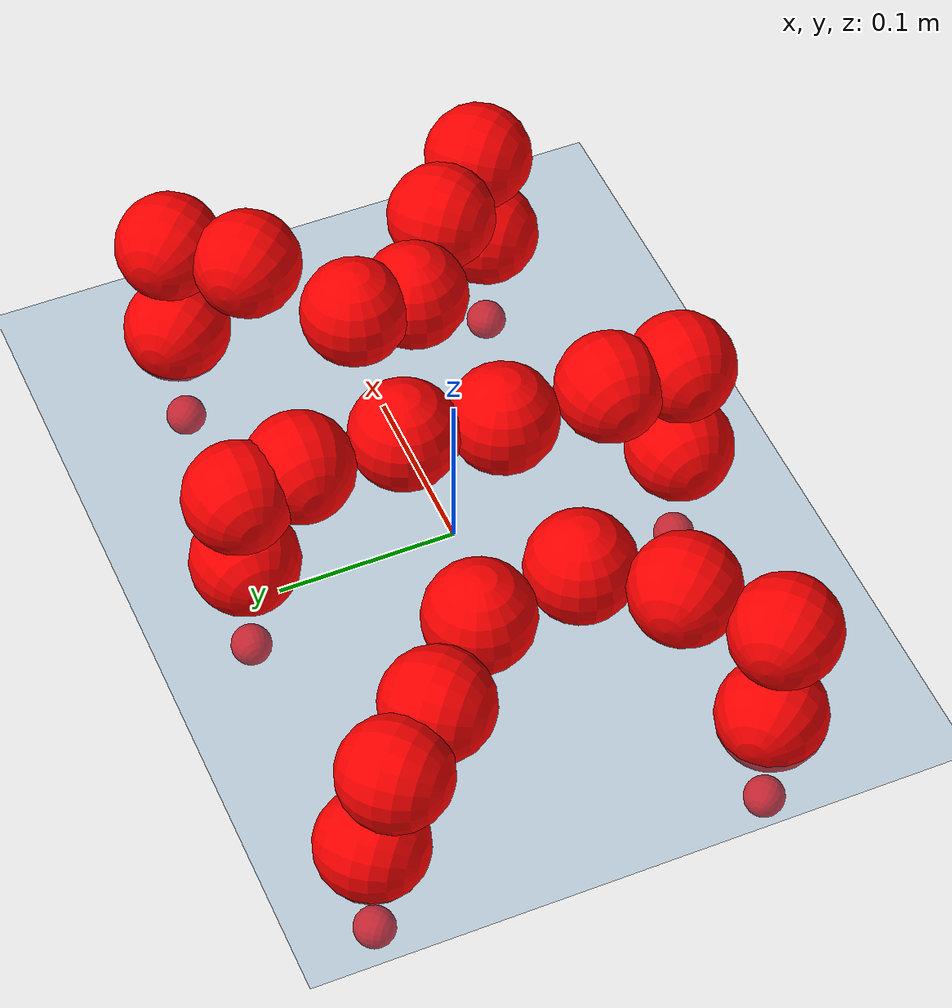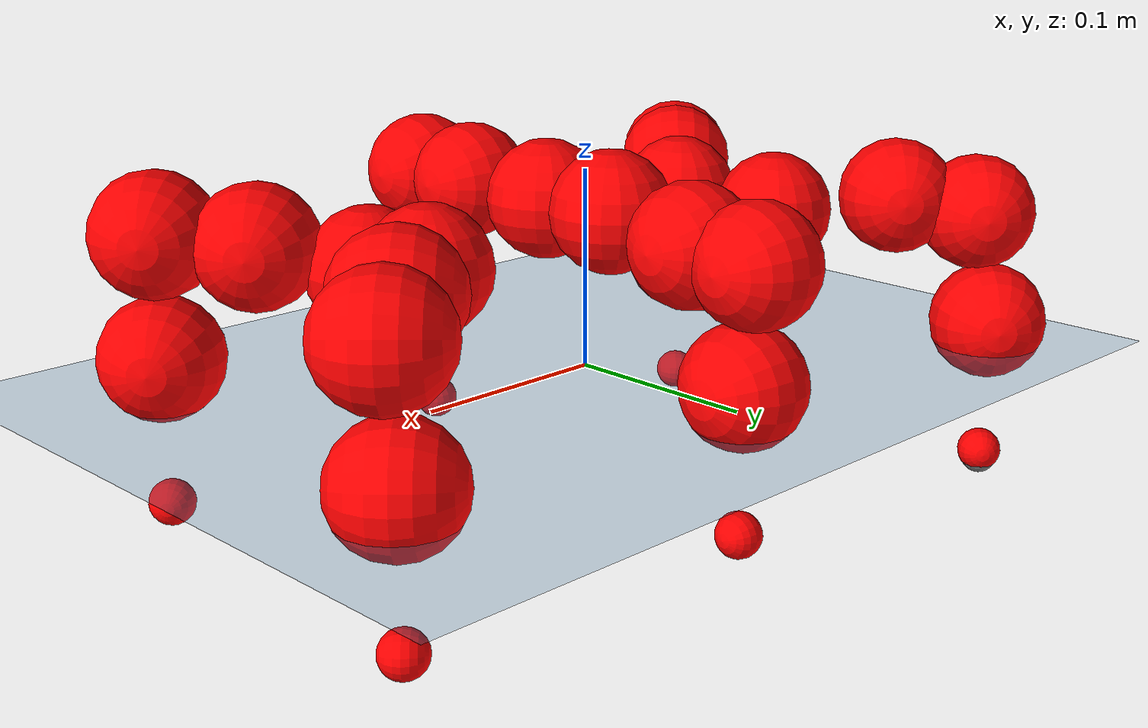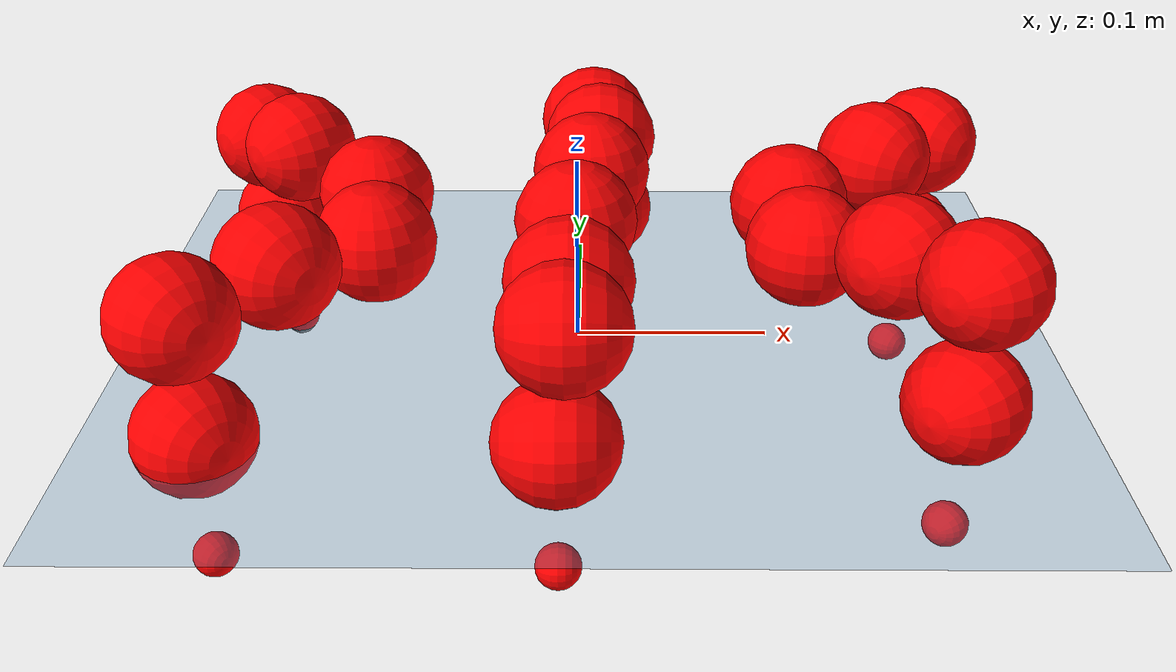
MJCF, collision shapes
<mujoco model="Golem">
  <compiler angle="radian" assetdir="assets" balanceinertia="true" inertiafromgeom="false"/>

  <option timestep="0.005" density="1.2" viscosity="2e-05"/>

  <size nkey="1"/>

  <visual>
    <quality shadowsize="8192"/>
    <map shadowclip="0.5"/>
  </visual>

  <default>
    <default class="/">
      <joint armature="0.01" damping="0.01" frictionloss="0.01"/>
      <geom contype="0" conaffinity="0" group="1" solref="-1000 -80"/>
      <site size="0.01 0.005 0.005" group="5"/>
      <general forcelimited="true" biastype="affine" gainprm="25" biasprm="0 -25 -0.5"/>
      <default class="visual">
        <geom type="mesh" group="2"/>
      </default>
      <default class="collision">
        <geom group="3"/>
      </default>
      <default class="foot">
        <geom size="0.01 0 0" condim="6" group="4" priority="1" solimp="0.015 1 0.01"/>
      </default>
      <default class="reward_collision_sphere">
        <geom group="5" rgba="1 0 0 1"/>
      </default>
    </default>
  </default>

  <asset>
    <texture type="skybox" colorspace="auto" name="//unnamed_texture_0" builtin="gradient" rgb1="0.95 0.95 0.95" rgb2="0.95 0.95 0.95" width="100" height="600"/>
    <texture type="2d" colorspace="auto" name="texplane" builtin="checker" rgb1="0.345 0.575 0.748" rgb2="0.345 0.575 0.748" markrgb="1 1 1" width="512" height="512"/>
    <material name="MatPlane" class="/" texture="texplane" texuniform="true" texrepeat="2 2" specular="0.9"/>
    <mesh name="body" class="/" file="body.stl" scale="0.001 0.001 0.001"/>
    <mesh name="coxa" class="/" file="coxa.stl" scale="0.001 0.001 0.001"/>
    <mesh name="femur" class="/" file="femur.stl" scale="0.001 0.001 0.001"/>
    <mesh name="tibia" class="/" file="tibia.stl" scale="0.001 0.001 0.001"/>
    <mesh name="tarsus" class="/" file="tarsus.stl" scale="0.001 0.001 0.001"/>
  </asset>

  <worldbody>
    <geom name="floor" class="/" size="100 100 0.125" type="plane" group="0" material="MatPlane"/>
    <light name="toplight_shadow" class="/" pos="0 0 5" dir="0.0990148 0.0990148 -0.990148" type="directional" ambient="0.04 0.04 0.04" diffuse="0.55 0.55 0.55" specular="0.12 0.12 0.12"/>
    <light name="toplight_fill" class="/" pos="0 0 5" dir="0.0990148 0.0990148 -0.990148" type="directional" castshadow="false" ambient="0.04 0.04 0.04" diffuse="0.3 0.3 0.3" specular="0.08 0.08 0.08"/>
    <body name="trunk" pos="0.000319933 -0.000227698 0.000231826" quat="0.999988 -0.00442291 0.00202063 0.00114689">
      <inertial pos="-0.0002812 -0.00217317 -0.00506352" quat="0.999995 -0.000395078 0.00316499 0.000358954" mass="1.37419" diaginertia="0.00135952 0.000128605 0.0215546"/>
      <joint name="//unnamed_joint_0" type="free"/>
      <geom name="//unnamed_geom_1" class="/" pos="0 0 0.0748389" quat="1 0 0 0" type="mesh" rgba="0.9 0.9 0.9 1" mesh="body"/>
      <site name="imu" class="/" pos="0.0417641 0.0194036 0.12294" size="0.00751996"/>
      <camera name="track" class="/" pos="0 -0.829288 0" quat="0.707107 0.707107 0 0" mode="trackcom"/>
      <camera name="ego_camera" class="/" pos="0.0873582 0 0.116936" quat="-0.5 -0.5 0.5 0.5"/>
      <body name="coxa_RR" pos="-0.113484 -0.0427361 0.0689008" quat="0.386509 0.00211509 -0.00156013 -0.922282">
        <inertial pos="0.00131895 -0.00221236 -0.00614335" quat="0.999722 0.00529341 0.0206332 -0.0101178" mass="0.0774552" diaginertia="0.00125457 0.00011491 0.0195823"/>
        <joint name="coxa_joint_RR" class="/" pos="0 0 0" axis="0.00412248 0.00788481 -0.99996" range="-3.01178 3.30579" armature="0.00731056" damping="0.00732945" frictionloss="0.00600638"/>
        <geom name="//unnamed_geom_2" class="/" type="mesh" rgba="0.2 0.2 0.2 1" mesh="coxa"/>
        <geom name="//unnamed_geom_3" class="reward_collision_sphere" size="0.0300798" pos="-0.0201596 0 0"/>
        <body name="femur_RR" pos="0.0356725 -0.000925436 0.00740036" quat="0.500436 -0.499782 0.499916 0.499865">
          <inertial pos="0.00117577 -0.000788888 -0.000264742" quat="0.99995 -0.00793492 -0.00451438 0.00412266" mass="0.0877099" diaginertia="0.00133199 0.000118208 0.0221688"/>
          <joint name="femur_joint_RR" class="/" pos="0 0 0" axis="-0.00681524 -0.0115606 -0.99991" range="-3.30464 3.17603" armature="0.010376" damping="0.0210903" frictionloss="0.00775305"/>
          <geom name="//unnamed_geom_4" class="/" type="mesh" rgba="0.9 0.9 0.9 1" mesh="femur"/>
          <geom name="//unnamed_geom_5" class="reward_collision_sphere" size="0.0300798"/>
          <body name="tibia_RR" pos="0.00647192 -0.0540145 -0.00219609" quat="-0.00230968 0.999996 -0.000299406 0.0015763">
            <inertial pos="-0.00673575 -0.00360494 -0.00148141" quat="0.999951 -0.00971846 -0.0017465 -0.000146344" mass="0.0780191" diaginertia="0.0013862 0.000122005 0.0238484"/>
            <joint name="tibia_joint_RR" class="/" pos="0 0 0" axis="-0.0314386 -0.0296948 0.999064" range="-3.31321 3.17658" armature="0.00976554" damping="0.0315317" frictionloss="0.00704405"/>
            <geom name="//unnamed_geom_6" class="/" type="mesh" rgba="0.2 0.2 0.2 1" mesh="tibia"/>
            <geom name="//unnamed_geom_7" class="reward_collision_sphere" size="0.0300798"/>
            <body name="tarsus_RR" pos="0.0657893 -0.00246055 0.00363227" quat="1 0.000157786 -0.000645913 -0.00020805">
              <inertial pos="0.0438297 0.000736636 0.00174764" quat="0.505433 0.493491 0.497621 0.503366" mass="0.0789714" diaginertia="0.00126279 0.00012284 0.0197947"/>
              <joint name="tarsus_joint_RR" class="/" pos="0 0 0" axis="0.0321584 0.0139232 0.999386" range="-3.08652 3.11223" armature="0.00729925" damping="0" frictionloss="0.00788091"/>
              <geom name="//unnamed_geom_8" class="/" type="mesh" rgba="0.9 0.9 0.9 1" mesh="tarsus"/>
              <geom name="foot_1" class="foot" size="0.00723839" pos="0.0752624 0 0" quat="0 -0.707107 0 0.707107"/>
              <geom name="//unnamed_geom_10" class="reward_collision_sphere" size="0.0300798"/>
              <geom name="//unnamed_geom_11" class="reward_collision_sphere" size="0.0112799" pos="0.0722385 0 0"/>
              <site name="foot_1" class="foot" pos="0.0752624 0 0" quat="0 -0.707107 0 0.707107" size="0.00751996"/>
            </body>
          </body>
        </body>
      </body>
      <body name="coxa_RM" pos="-0.000911507 -0.048479 0.0806827" quat="0.708013 0.00384347 0.000857695 -0.706188">
        <inertial pos="-0.00250892 0.00756343 -0.00104392" quat="0.999951 0.00471304 0.00810374 -0.00311082" mass="0.093374" diaginertia="0.00152642 0.000119822 0.0214235"/>
        <joint name="coxa_joint_RM" class="/" pos="0 0 0" axis="0.0249252 0.0278784 -0.999301" stiffness="0.00307437" range="-3.1468 3.00235" armature="0.00424057" damping="0.0326724" frictionloss="0.00955789"/>
        <geom name="//unnamed_geom_12" class="/" type="mesh" rgba="0.2 0.2 0.2 1" mesh="coxa"/>
        <geom name="//unnamed_geom_13" class="reward_collision_sphere" size="0.0300798" pos="-0.0201596 0 0"/>
        <body name="femur_RM" pos="0.0399742 -0.00240335 0.000352075" quat="0.500204 -0.499552 0.499827 0.500416">
          <inertial pos="-0.00454004 -0.000703245 0.00124443" quat="0.999999 0.000681558 0.0006709 -0.000895381" mass="0.0766147" diaginertia="0.00141504 0.000116606 0.0208275"/>
          <joint name="femur_joint_RM" class="/" pos="0 0 0" axis="-0.00069453 0.00513066 -0.999987" range="-3.0805 3.09953" armature="0.00704772" damping="0" frictionloss="0.00565034"/>
          <geom name="//unnamed_geom_14" class="/" type="mesh" rgba="0.9 0.9 0.9 1" mesh="femur"/>
          <geom name="//unnamed_geom_15" class="reward_collision_sphere" size="0.0300798"/>
          <body name="tibia_RM" pos="0.000465425 -0.0404118 -0.00136836" quat="0.000404171 1 -0.000312182 -0.000676218">
            <inertial pos="-0.00160361 -0.00123279 0.00774834" quat="0.999351 0.016913 -0.0172022 0.0267422" mass="0.0848282" diaginertia="0.00125996 0.000128644 0.0204398"/>
            <joint name="tibia_joint_RM" class="/" pos="0 0 0" axis="0.000347572 2.94438e-05 1" range="-3.12184 3.18013" armature="0.00481563" damping="0" frictionloss="0.00393329"/>
            <geom name="//unnamed_geom_16" class="/" type="mesh" rgba="0.2 0.2 0.2 1" mesh="tibia"/>
            <geom name="//unnamed_geom_17" class="reward_collision_sphere" size="0.0300798"/>
            <body name="tarsus_RM" pos="0.0591427 -0.000119191 0.00407463" quat="1 -2.94575e-05 -0.00025066 -0.000287282">
              <inertial pos="0.0353225 0.00089871 -0.000829798" quat="0.509478 0.50898 0.502391 0.478513" mass="0.0855536" diaginertia="0.00131756 0.000118993 0.023077"/>
              <joint name="tarsus_joint_RM" class="/" pos="0 0 0" axis="0.00113401 0.000599887 0.999999" range="-3.31413 3.07966" armature="0.0037931" damping="0" frictionloss="0.00828151"/>
              <geom name="//unnamed_geom_18" class="/" type="mesh" rgba="0.9 0.9 0.9 1" mesh="tarsus"/>
              <geom name="foot_2" class="foot" size="0.00516148" pos="0.0752624 0 0" quat="0 -0.707107 0 0.707107"/>
              <geom name="//unnamed_geom_20" class="reward_collision_sphere" size="0.0300798"/>
              <geom name="//unnamed_geom_21" class="reward_collision_sphere" size="0.0112799" pos="0.0722385 0 0"/>
              <site name="foot_2" class="foot" pos="0.0752624 0 0" quat="0 -0.707107 0 0.707107" size="0.00751996"/>
            </body>
          </body>
        </body>
      </body>
      <body name="coxa_RF" pos="0.127156 -0.0395148 0.0659849" quat="0.924017 0.000312874 -0.000335399 -0.382352">
        <inertial pos="0.00583429 0.0101991 -0.00454295" quat="0.999632 -0.0197015 -0.0181695 -0.00428906" mass="0.0861828" diaginertia="0.00128853 0.000124589 0.0220805"/>
        <joint name="coxa_joint_RF" class="/" pos="0 0 0" axis="0.00091046 0.0032556 -0.999994" range="-3.09669 2.97103" armature="0.00901284" damping="0.00547881" frictionloss="0.00692018"/>
        <geom name="//unnamed_geom_22" class="/" type="mesh" rgba="0.2 0.2 0.2 1" mesh="coxa"/>
        <geom name="//unnamed_geom_23" class="reward_collision_sphere" size="0.0300798" pos="-0.0201596 0 0"/>
        <body name="femur_RF" pos="0.0298563 0.00422919 0.0117047" quat="0.502811 -0.498173 0.500948 0.498052">
          <inertial pos="-3.58217e-05 0.005554 -0.00823985" quat="0.999038 0.0260719 -0.028589 0.0206388" mass="0.0834895" diaginertia="0.00142198 0.000133944 0.0213472"/>
          <joint name="femur_joint_RF" class="/" pos="0 0 0" axis="-0.00467244 0.00346033 -0.999983" stiffness="0.003084" range="-3.24211 3.13857" armature="0.00750456" damping="0.0209643" frictionloss="0.0105795"/>
          <geom name="//unnamed_geom_24" class="/" type="mesh" rgba="0.9 0.9 0.9 1" mesh="femur"/>
          <geom name="//unnamed_geom_25" class="reward_collision_sphere" size="0.0300798"/>
          <body name="tibia_RF" pos="-0.00454818 -0.0467449 -0.00293259" quat="-0.000444379 0.999996 0.00275139 6.94448e-05">
            <inertial pos="-0.0020149 -0.00343797 0.00154958" quat="0.999691 -0.0215389 -0.0101963 0.00704233" mass="0.08343" diaginertia="0.00134102 0.000123935 0.0217804"/>
            <joint name="tibia_joint_RF" class="/" pos="0 0 0" axis="-0.0377659 0.00257687 0.999283" range="-3.15033 3.10766" armature="0.00805044" damping="0.0204443" frictionloss="0.00745028"/>
            <geom name="//unnamed_geom_26" class="/" type="mesh" rgba="0.2 0.2 0.2 1" mesh="tibia"/>
            <geom name="//unnamed_geom_27" class="reward_collision_sphere" size="0.0300798"/>
            <body name="tarsus_RF" pos="0.059984 0.00186096 0.00342489" quat="0.999992 -0.000854394 -0.00115324 0.00376179">
              <inertial pos="0.0484851 0.00113674 -0.00985389" quat="0.520015 0.497043 0.502396 0.479719" mass="0.0984303" diaginertia="0.0013607 0.000133345 0.024812"/>
              <joint name="tarsus_joint_RF" class="/" pos="0 0 0" axis="0.043352 -0.00606803 0.999041" range="-3.31588 3.1408" armature="0.00768163" damping="0" frictionloss="0.00566262"/>
              <geom name="//unnamed_geom_28" class="/" type="mesh" rgba="0.9 0.9 0.9 1" mesh="tarsus"/>
              <geom name="foot_3" class="foot" size="0.00736241" pos="0.0752624 0 0" quat="0 -0.707107 0 0.707107"/>
              <geom name="//unnamed_geom_30" class="reward_collision_sphere" size="0.0300798"/>
              <geom name="//unnamed_geom_31" class="reward_collision_sphere" size="0.0112799" pos="0.0722385 0 0"/>
              <site name="foot_3" class="foot" pos="0.0752624 0 0" quat="0 -0.707107 0 0.707107" size="0.00751996"/>
            </body>
          </body>
        </body>
      </body>
      <body name="coxa_LR" pos="-0.121646 0.0452624 0.0675779" quat="0.379004 0.000761193 -0.00109634 0.925394">
        <inertial pos="-0.00776221 0.00206212 0.00428456" quat="0.999533 0.0104259 0.0285901 -0.00274676" mass="0.0835111" diaginertia="0.00135211 0.000120683 0.0215262"/>
        <joint name="coxa_joint_LR" class="/" pos="0 0 0" axis="0.0432753 0.00250201 -0.99906" range="-3.1526 3.17663" armature="0.00820067" damping="0.0450179" frictionloss="0.00690834"/>
        <geom name="//unnamed_geom_32" class="/" type="mesh" rgba="0.2 0.2 0.2 1" mesh="coxa"/>
        <geom name="//unnamed_geom_33" class="reward_collision_sphere" size="0.0300798" pos="-0.0201596 0 0"/>
        <body name="femur_LR" pos="0.0441327 0.00301661 0.00701304" quat="0.500077 -0.502488 0.50041 0.49701">
          <inertial pos="-0.00123627 -0.00147817 0.00294247" quat="0.999965 0.00708495 -0.00444731 -0.000566525" mass="0.0816733" diaginertia="0.00133827 0.000119842 0.0206402"/>
          <joint name="femur_joint_LR" class="/" pos="0 0 0" axis="0.00179339 -0.00144108 0.999997" stiffness="0.0043109" range="-3.19513 2.93685" armature="0.00649057" damping="0.00358619" frictionloss="0.00391396"/>
          <geom name="//unnamed_geom_34" class="/" type="mesh" rgba="0.9 0.9 0.9 1" mesh="femur"/>
          <geom name="//unnamed_geom_35" class="reward_collision_sphere" size="0.0300798"/>
          <body name="tibia_LR" pos="0.00760092 -0.041331 -0.0057036" quat="-7.69432e-05 1 -0.000917496 0.00023415">
            <inertial pos="-0.000123239 -0.000829747 0.00128493" quat="1 -5.05627e-05 0.000217948 -0.00033694" mass="0.0875206" diaginertia="0.00135939 0.000113016 0.0216611"/>
            <joint name="tibia_joint_LR" class="/" pos="0 0 0" axis="0.00719062 -0.000984257 -0.999974" range="-3.14648 3.29078" armature="0.0110014" damping="0" frictionloss="0.00873001"/>
            <geom name="//unnamed_geom_36" class="/" type="mesh" rgba="0.2 0.2 0.2 1" mesh="tibia"/>
            <geom name="//unnamed_geom_37" class="reward_collision_sphere" size="0.0300798"/>
            <body name="tarsus_LR" pos="0.0557929 0.00630122 0.0105654" quat="1 0.000147775 -7.10226e-05 -8.38531e-05">
              <inertial pos="0.0430619 0.00237588 -0.00109198" quat="0.493519 0.505456 0.504109 0.496817" mass="0.0864234" diaginertia="0.00139181 0.000125994 0.0225374"/>
              <joint name="tarsus_joint_LR" class="/" pos="0 0 0" axis="-4.08751e-05 7.77806e-06 -1" stiffness="0.0161535" range="-3.30616 3.13693" armature="0.00721812" damping="0.0564341" frictionloss="0.00804936"/>
              <geom name="//unnamed_geom_38" class="/" type="mesh" rgba="0.9 0.9 0.9 1" mesh="tarsus"/>
              <geom name="foot_4" class="foot" size="0.00957162" pos="0.0752624 0 0" quat="0.707107 0 -0.707107 0"/>
              <geom name="//unnamed_geom_40" class="reward_collision_sphere" size="0.0300798"/>
              <geom name="//unnamed_geom_41" class="reward_collision_sphere" size="0.0112799" pos="0.0722385 0 0"/>
              <site name="foot_4" class="foot" pos="0.0752624 0 0" quat="0.707107 0 -0.707107 0" size="0.00751996"/>
            </body>
          </body>
        </body>
      </body>
      <body name="coxa_LM" pos="0.00654727 0.0445808 0.0841717" quat="0.708577 -0.00224289 -0.00402189 0.705618">
        <inertial pos="0.00187751 0.0003515 -0.00413238" quat="0.999961 0.00606381 0.000597441 0.00641037" mass="0.075207" diaginertia="0.00105412 0.00010744 0.0185179"/>
        <joint name="coxa_joint_LM" class="/" pos="0 0 0" axis="-0.000279259 -0.000616458 -1" range="-3.00549 3.12345" armature="0.00966" damping="0" frictionloss="0.00516156"/>
        <geom name="//unnamed_geom_42" class="/" type="mesh" rgba="0.2 0.2 0.2 1" mesh="coxa"/>
        <geom name="//unnamed_geom_43" class="reward_collision_sphere" size="0.0300798" pos="-0.0201596 0 0"/>
        <body name="femur_LM" pos="0.0362595 -0.0048148 -0.00537487" quat="0.500036 -0.500002 0.499887 0.500076">
          <inertial pos="-0.000748514 0.00541124 -0.000289783" quat="0.999801 0.00747057 -0.0115249 0.0144563" mass="0.101372" diaginertia="0.0015368 0.000139946 0.0249908"/>
          <joint name="femur_joint_LM" class="/" pos="0 0 0" axis="0.00875819 -0.00799396 0.99993" range="-3.13439 3.10079" armature="0.00875771" damping="0" frictionloss="0.00584717"/>
          <geom name="//unnamed_geom_44" class="/" type="mesh" rgba="0.9 0.9 0.9 1" mesh="femur"/>
          <geom name="//unnamed_geom_45" class="reward_collision_sphere" size="0.0300798"/>
          <body name="tibia_LM" pos="0.00358355 -0.0351737 0.00376968" quat="-0.000545117 1 -0.000311629 -0.000246224">
            <inertial pos="0.00891321 -0.0102669 0.00165033" quat="0.999999 -0.000538667 -0.000535714 0.00107723" mass="0.0791681" diaginertia="0.00149968 0.000126627 0.0226002"/>
            <joint name="tibia_joint_LM" class="/" pos="0 0 0" axis="-0.000696595 -0.00375751 -0.999993" stiffness="0.00170611" range="-3.25176 3.15099" armature="0.00705726" damping="0" frictionloss="0.00888008"/>
            <geom name="//unnamed_geom_46" class="/" type="mesh" rgba="0.2 0.2 0.2 1" mesh="tibia"/>
            <geom name="//unnamed_geom_47" class="reward_collision_sphere" size="0.0300798"/>
            <body name="tarsus_LM" pos="0.0558582 -0.00212748 0.0035502" quat="0.999999 -0.00037252 -0.000899361 0.000567165">
              <inertial pos="0.0420822 0.000166961 -0.000143891" quat="0.496367 0.496769 0.499483 0.507304" mass="0.0910931" diaginertia="0.00142356 0.000124713 0.0203612"/>
              <joint name="tarsus_joint_LM" class="/" pos="0 0 0" axis="-0.030812 0.0107976 -0.999467" range="-3.14643 3.24805" armature="0.00735101" damping="0" frictionloss="0.00999508"/>
              <geom name="//unnamed_geom_48" class="/" type="mesh" rgba="0.9 0.9 0.9 1" mesh="tarsus"/>
              <geom name="foot_5" class="foot" size="0.00796944" pos="0.0752624 0 0" quat="0.707107 0 -0.707107 0"/>
              <geom name="//unnamed_geom_50" class="reward_collision_sphere" size="0.0300798"/>
              <geom name="//unnamed_geom_51" class="reward_collision_sphere" size="0.0112799" pos="0.0722385 0 0"/>
              <site name="foot_5" class="foot" pos="0.0752624 0 0" quat="0.707107 0 -0.707107 0" size="0.00751996"/>
            </body>
          </body>
        </body>
      </body>
      <body name="coxa_LF" pos="0.122516 0.0253393 0.072466" quat="0.924397 0.000476049 0.000239982 0.381431">
        <inertial pos="-0.00189913 0.00540888 -0.000611053" quat="0.999999 -0.000712861 0.000708449 -0.000157087" mass="0.0935478" diaginertia="0.00148232 0.000143614 0.0234353"/>
        <joint name="coxa_joint_LF" class="/" pos="0 0 0" axis="-0.00902812 0.00961315 -0.999913" stiffness="0.0134571" range="-3.03907 3.16293" armature="0.00767468" damping="0.0194374" frictionloss="0.00634574"/>
        <geom name="//unnamed_geom_52" class="/" type="mesh" rgba="0.2 0.2 0.2 1" mesh="coxa"/>
        <geom name="//unnamed_geom_53" class="reward_collision_sphere" size="0.0300798" pos="-0.0201596 0 0"/>
        <body name="femur_LF" pos="0.0453435 -0.00568602 0.00686983" quat="0.500977 -0.498241 0.50002 0.500757">
          <inertial pos="-0.00228592 -0.000292166 -0.00195267" quat="0.998808 0.0266915 -0.0261972 -0.0313536" mass="0.0838539" diaginertia="0.00135816 0.000132978 0.0226317"/>
          <joint name="femur_joint_LF" class="/" pos="0 0 0" axis="-0.0155866 0.00796719 0.999847" range="-3.09823 3.18832" armature="0.0068124" damping="0" frictionloss="0.0113459"/>
          <geom name="//unnamed_geom_54" class="/" type="mesh" rgba="0.9 0.9 0.9 1" mesh="femur"/>
          <geom name="//unnamed_geom_55" class="reward_collision_sphere" size="0.0300798"/>
          <body name="tibia_LF" pos="0.00400919 -0.0469374 -0.000106914" quat="0.000536002 1 0.000231804 -0.000289052">
            <inertial pos="-0.000399006 -0.000168904 0.00205247" quat="0.999891 0.00840436 0.00867341 0.00849025" mass="0.0797915" diaginertia="0.00137281 0.000126575 0.02265"/>
            <joint name="tibia_joint_LF" class="/" pos="0 0 0" axis="0.0156261 0.0054429 -0.999863" range="-2.95083 3.18045" armature="0.0061596" damping="0" frictionloss="0.00933359"/>
            <geom name="//unnamed_geom_56" class="/" type="mesh" rgba="0.2 0.2 0.2 1" mesh="tibia"/>
            <geom name="//unnamed_geom_57" class="reward_collision_sphere" size="0.0300798"/>
            <body name="tarsus_LF" pos="0.0612145 -0.00154562 -0.00302322" quat="0.999999 0.000876812 0.000116274 -0.000519605">
              <inertial pos="0.0424999 0.000693555 -0.0091799" quat="0.498901 0.500973 0.500975 0.499147" mass="0.0857841" diaginertia="0.00138622 0.000125386 0.0227987"/>
              <joint name="tarsus_joint_LF" class="/" pos="0 0 0" axis="0.029154 -0.00545193 -0.99956" stiffness="0.00223811" range="-3.12805 3.06033" armature="0.00756927" damping="0.0541242" frictionloss="0.00810719"/>
              <geom name="//unnamed_geom_58" class="/" type="mesh" rgba="0.9 0.9 0.9 1" mesh="tarsus"/>
              <geom name="foot_6" class="foot" size="0.00704892" pos="0.0752624 0 0" quat="0.707107 0 -0.707107 0"/>
              <geom name="//unnamed_geom_60" class="reward_collision_sphere" size="0.0300798"/>
              <geom name="//unnamed_geom_61" class="reward_collision_sphere" size="0.0112799" pos="0.0722385 0 0"/>
              <site name="foot_6" class="foot" pos="0.0752624 0 0" quat="0.707107 0 -0.707107 0" size="0.00751996"/>
            </body>
          </body>
        </body>
      </body>
    </body>
  </worldbody>

  <contact>
    <pair class="/" geom1="floor" geom2="foot_1" name="//unnamed_contact_0"/>
    <pair class="/" geom1="floor" geom2="foot_2" name="//unnamed_contact_1"/>
    <pair class="/" geom1="floor" geom2="foot_3" name="//unnamed_contact_2"/>
    <pair class="/" geom1="floor" geom2="foot_4" name="//unnamed_contact_3"/>
    <pair class="/" geom1="floor" geom2="foot_5" name="//unnamed_contact_4"/>
    <pair class="/" geom1="floor" geom2="foot_6" name="//unnamed_contact_5"/>
  </contact>

  <actuator>
    <general name="coxa_joint_RR" class="/" joint="coxa_joint_RR" forcerange="-4.36795 4.36795" gainprm="23.2242" biasprm="0 -23.2242 -0.460692"/>
    <general name="femur_joint_RR" class="/" joint="femur_joint_RR" forcerange="-5.06176 5.06176" gainprm="23.2242" biasprm="0 -23.2242 -0.460692"/>
    <general name="tibia_joint_RR" class="/" joint="tibia_joint_RR" forcerange="-5.44467 5.44467" gainprm="23.2242" biasprm="0 -23.2242 -0.460692"/>
    <general name="tarsus_joint_RR" class="/" joint="tarsus_joint_RR" forcerange="-5.67148 5.67148" gainprm="23.2242" biasprm="0 -23.2242 -0.460692"/>
    <general name="coxa_joint_RM" class="/" joint="coxa_joint_RM" forcerange="-4.33392 4.33392" gainprm="23.2242" biasprm="0 -23.2242 -0.460692"/>
    <general name="femur_joint_RM" class="/" joint="femur_joint_RM" forcerange="-4.07856 4.07856" gainprm="23.2242" biasprm="0 -23.2242 -0.460692"/>
    <general name="tibia_joint_RM" class="/" joint="tibia_joint_RM" forcerange="-5.96387 5.96387" gainprm="23.2242" biasprm="0 -23.2242 -0.460692"/>
    <general name="tarsus_joint_RM" class="/" joint="tarsus_joint_RM" forcerange="-3.54014 3.54014" gainprm="23.2242" biasprm="0 -23.2242 -0.460692"/>
    <general name="coxa_joint_RF" class="/" joint="coxa_joint_RF" forcerange="-3.83451 3.83451" gainprm="23.2242" biasprm="0 -23.2242 -0.460692"/>
    <general name="femur_joint_RF" class="/" joint="femur_joint_RF" forcerange="-7.15958 7.15958" gainprm="23.2242" biasprm="0 -23.2242 -0.460692"/>
    <general name="tibia_joint_RF" class="/" joint="tibia_joint_RF" forcerange="-5.88046 5.88046" gainprm="23.2242" biasprm="0 -23.2242 -0.460692"/>
    <general name="tarsus_joint_RF" class="/" joint="tarsus_joint_RF" forcerange="-5.91076 5.91076" gainprm="23.2242" biasprm="0 -23.2242 -0.460692"/>
    <general name="coxa_joint_LR" class="/" joint="coxa_joint_LR" forcerange="-4.90699 4.90699" gainprm="23.2242" biasprm="0 -23.2242 -0.460692"/>
    <general name="femur_joint_LR" class="/" joint="femur_joint_LR" forcerange="-6.53531 6.53531" gainprm="23.2242" biasprm="0 -23.2242 -0.460692"/>
    <general name="tibia_joint_LR" class="/" joint="tibia_joint_LR" forcerange="-5.92128 5.92128" gainprm="23.2242" biasprm="0 -23.2242 -0.460692"/>
    <general name="tarsus_joint_LR" class="/" joint="tarsus_joint_LR" forcerange="-5.16067 5.16067" gainprm="23.2242" biasprm="0 -23.2242 -0.460692"/>
    <general name="coxa_joint_LM" class="/" joint="coxa_joint_LM" forcerange="-5.59084 5.59084" gainprm="23.2242" biasprm="0 -23.2242 -0.460692"/>
    <general name="femur_joint_LM" class="/" joint="femur_joint_LM" forcerange="-5.53418 5.53418" gainprm="23.2242" biasprm="0 -23.2242 -0.460692"/>
    <general name="tibia_joint_LM" class="/" joint="tibia_joint_LM" forcerange="-7.42055 7.42055" gainprm="23.2242" biasprm="0 -23.2242 -0.460692"/>
    <general name="tarsus_joint_LM" class="/" joint="tarsus_joint_LM" forcerange="-5.49918 5.49918" gainprm="23.2242" biasprm="0 -23.2242 -0.460692"/>
    <general name="coxa_joint_LF" class="/" joint="coxa_joint_LF" forcerange="-4.05645 4.05645" gainprm="23.2242" biasprm="0 -23.2242 -0.460692"/>
    <general name="femur_joint_LF" class="/" joint="femur_joint_LF" forcerange="-3.98258 3.98258" gainprm="23.2242" biasprm="0 -23.2242 -0.460692"/>
    <general name="tibia_joint_LF" class="/" joint="tibia_joint_LF" forcerange="-5.1596 5.1596" gainprm="23.2242" biasprm="0 -23.2242 -0.460692"/>
    <general name="tarsus_joint_LF" class="/" joint="tarsus_joint_LF" forcerange="-5.52643 5.52643" gainprm="23.2242" biasprm="0 -23.2242 -0.460692"/>
  </actuator>

  <sensor>
    <gyro site="imu" name="imu_angular_velocity"/>
    <velocimeter site="imu" name="imu_linear_velocity"/>
    <framelinvel objtype="site" objname="foot_1" name="foot_1_global_linear_velocity"/>
    <framelinvel objtype="site" objname="foot_2" name="foot_2_global_linear_velocity"/>
    <framelinvel objtype="site" objname="foot_3" name="foot_3_global_linear_velocity"/>
    <framelinvel objtype="site" objname="foot_4" name="foot_4_global_linear_velocity"/>
    <framelinvel objtype="site" objname="foot_5" name="foot_5_global_linear_velocity"/>
    <framelinvel objtype="site" objname="foot_6" name="foot_6_global_linear_velocity"/>
  </sensor>

  <keyframe>
    <key name="home" qpos="0 0 0.1457 1 0 0 0 0 0 0 0 0 0 0 0 0 0 0 0 0 0 0 0 0 0 0 0 0 0 0 0"/>
  </keyframe>
</mujoco>
